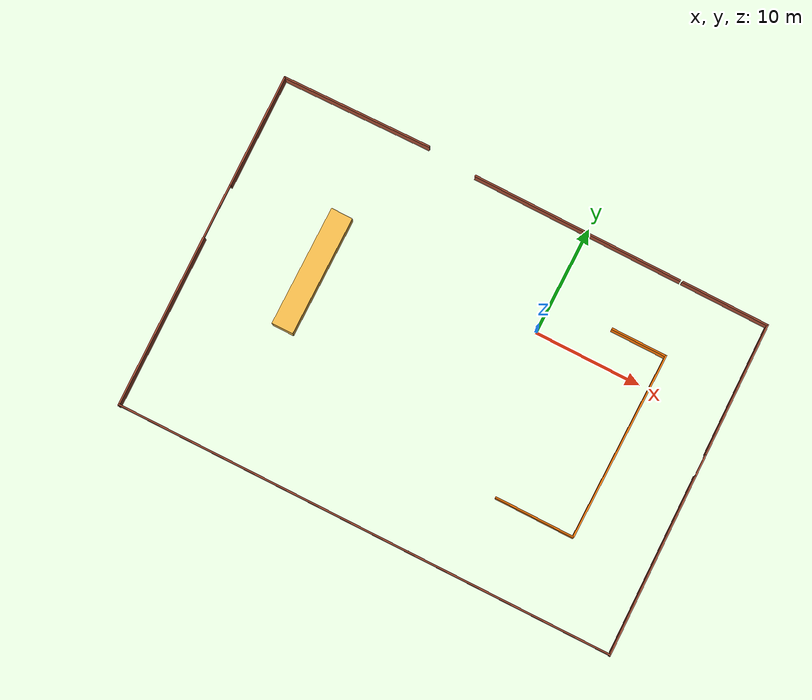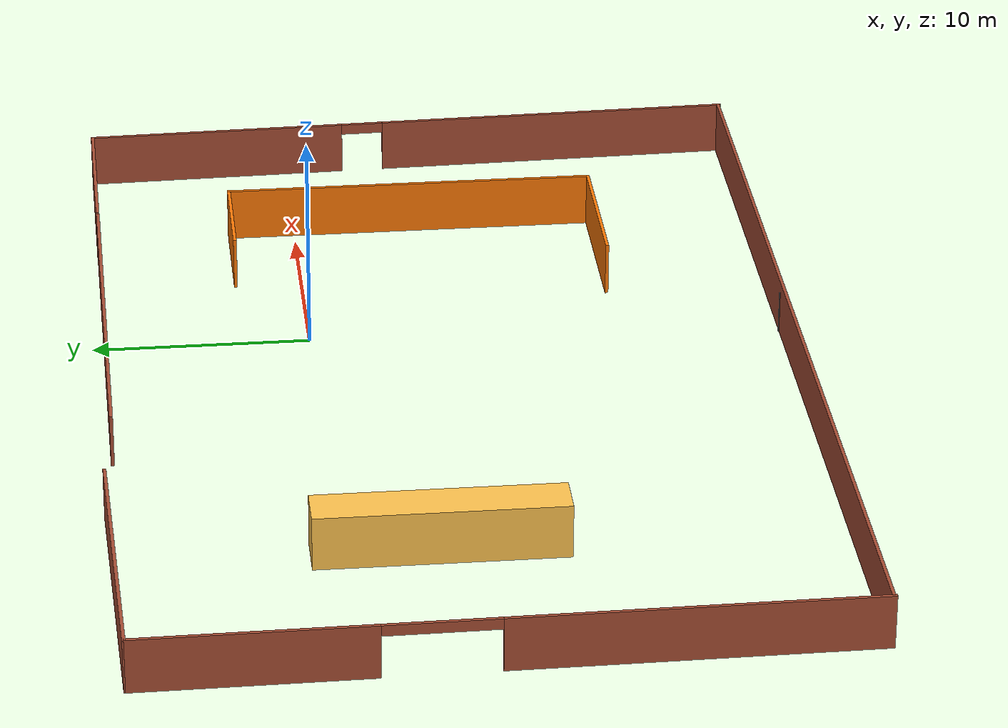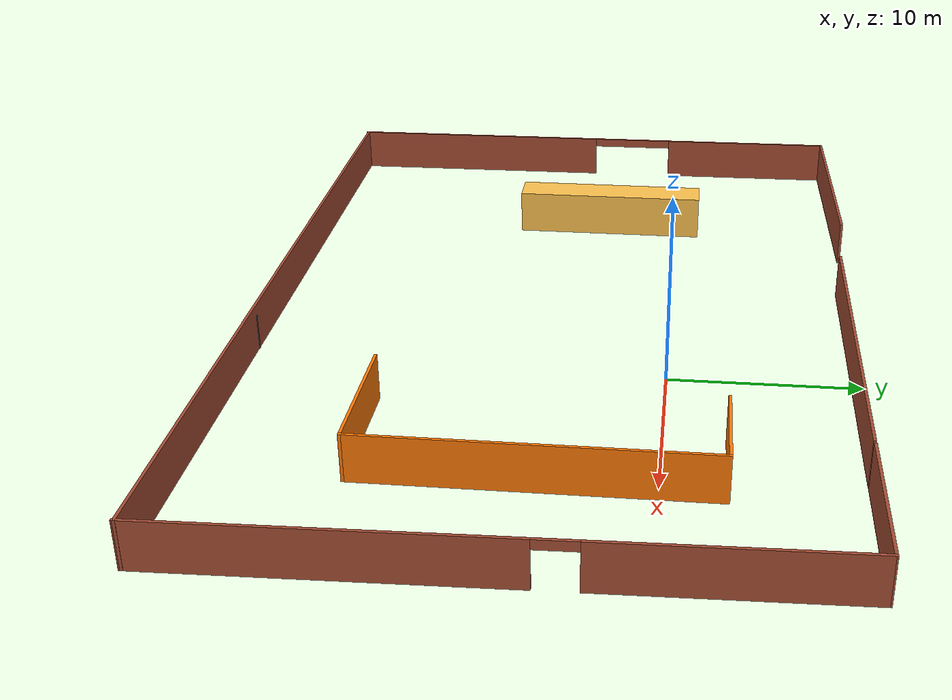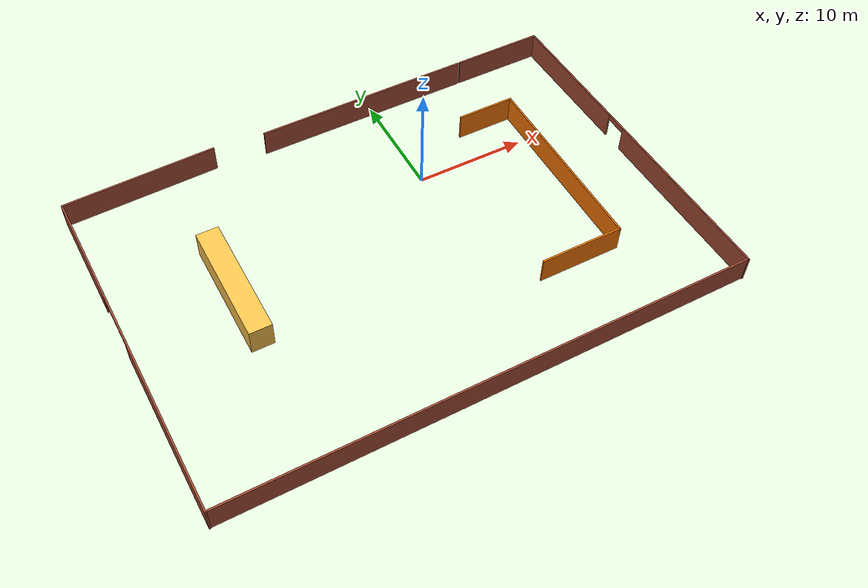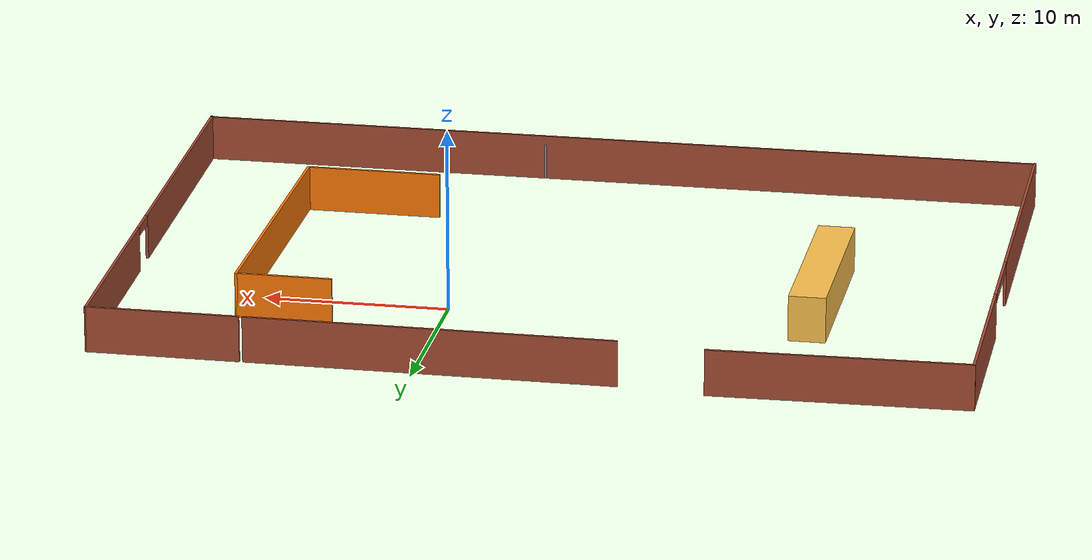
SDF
<?xml version='1.0'?>
<sdf version='1.7'>
  <model name='carhouse'>
    <pose>-5.49363 -6.06314 0 0 -0 0</pose>
    <link name='Door_1'>
      <collision name='Door_1_Collision'>
        <geometry>
          <box>
            <size>0.1 0.17 2</size>
          </box>
        </geometry>
        <pose>0 0 1 0 -0 0</pose>
      </collision>
      <visual name='Door_1_Visual'>
        <pose>0 0 1 0 -0 0</pose>
        <geometry>
          <box>
            <size>0.1 0.17 2</size>
          </box>
        </geometry>
        <material>
          <script>
            <uri>file://media/materials/scripts/gazebo.material</uri>
            <name>Gazebo/Grey</name>
          </script>
        </material>
      </visual>
      <pose>4.31634 -15.7107 0 0 -0 0</pose>
    </link>
    <link name='Wall_0'>
      <collision name='Wall_0_Collision'>
        <geometry>
          <box>
            <size>19.75 0.15 2.5</size>
          </box>
        </geometry>
        <pose>0 0 1.25 0 -0 0</pose>
      </collision>
      <visual name='Wall_0_Visual'>
        <pose>0 0 1.25 0 -0 0</pose>
        <geometry>
          <box>
            <size>19.75 0.15 2.5</size>
          </box>
        </geometry>
        <material>
          <script>
            <uri>file://media/materials/scripts/gazebo.material</uri>
            <name>Gazebo/Bricks</name>
          </script>
          <ambient>1 1 1 1</ambient>
        </material>
        <meta>
          <layer>0</layer>
        </meta>
      </visual>
      <pose>4.60447 15.488 0 0 -0 0</pose>
    </link>
    <link name='Wall_10'>
      <collision name='Wall_10_Collision'>
        <geometry>
          <box>
            <size>5.25 0.15 2.5</size>
          </box>
        </geometry>
        <pose>0 0 1.25 0 -0 0</pose>
      </collision>
      <visual name='Wall_10_Visual'>
        <pose>0 0 1.25 0 -0 0</pose>
        <geometry>
          <box>
            <size>5.25 0.15 2.5</size>
          </box>
        </geometry>
        <material>
          <script>
            <uri>file://media/materials/scripts/gazebo.material</uri>
            <name>Gazebo/Grey</name>
          </script>
          <ambient>0.996078 0.47451 0.0196078 1</ambient>
        </material>
        <meta>
          <layer>0</layer>
        </meta>
      </visual>
      <pose>13.7472 9.15935 0 0 -0 0</pose>
    </link>
    <link name='Wall_11'>
      <collision name='Wall_11_Collision'>
        <geometry>
          <box>
            <size>17.5 0.15 2.5</size>
          </box>
        </geometry>
        <pose>0 0 1.25 0 -0 0</pose>
      </collision>
      <visual name='Wall_11_Visual'>
        <pose>0 0 1.25 0 -0 0</pose>
        <geometry>
          <box>
            <size>17.5 0.15 2.5</size>
          </box>
        </geometry>
        <material>
          <script>
            <uri>file://media/materials/scripts/gazebo.material</uri>
            <name>Gazebo/Grey</name>
          </script>
          <ambient>0.996078 0.47451 0.0196078 1</ambient>
        </material>
        <meta>
          <layer>0</layer>
        </meta>
      </visual>
      <pose>16.2972 0.484344 0 0 -0 -1.5708</pose>
    </link>
    <link name='Wall_12'>
      <collision name='Wall_12_Collision'>
        <geometry>
          <box>
            <size>7.5 0.15 2.5</size>
          </box>
        </geometry>
        <pose>0 0 1.25 0 -0 0</pose>
      </collision>
      <visual name='Wall_12_Visual'>
        <pose>0 0 1.25 0 -0 0</pose>
        <geometry>
          <box>
            <size>7.5 0.15 2.5</size>
          </box>
        </geometry>
        <material>
          <script>
            <uri>file://media/materials/scripts/gazebo.material</uri>
            <name>Gazebo/Grey</name>
          </script>
          <ambient>0.996078 0.47451 0.0196078 1</ambient>
        </material>
        <meta>
          <layer>0</layer>
        </meta>
      </visual>
      <pose>12.6222 -8.19065 0 0 -0 3.14159</pose>
    </link>
    <link name='Wall_2'>
      <collision name='Wall_2_Collision'>
        <geometry>
          <box>
            <size>8.25 0.15 2.5</size>
          </box>
        </geometry>
        <pose>0 0 1.25 0 -0 0</pose>
      </collision>
      <visual name='Wall_2_Visual'>
        <pose>0 0 1.25 0 -0 0</pose>
        <geometry>
          <box>
            <size>8.25 0.15 2.5</size>
          </box>
        </geometry>
        <material>
          <script>
            <uri>file://media/materials/scripts/gazebo.material</uri>
            <name>Gazebo/Bricks</name>
          </script>
          <ambient>1 1 1 1</ambient>
        </material>
        <meta>
          <layer>0</layer>
        </meta>
      </visual>
      <pose>18.7688 15.4972 0 0 -0 0</pose>
    </link>
    <link name='Wall_3'>
      <pose>23.2235 -0.104018 0 0 -0 -1.54486</pose>
      <visual name='Wall_3_Visual_0'>
        <pose>-9.4995 0 1.25 0 -0 0</pose>
        <geometry>
          <box>
            <size>12.364 0.15 2.5</size>
          </box>
        </geometry>
        <material>
          <script>
            <uri>file://media/materials/scripts/gazebo.material</uri>
            <name>Gazebo/Bricks</name>
          </script>
          <ambient>1 1 1 1</ambient>
        </material>
        <meta>
          <layer>0</layer>
        </meta>
      </visual>
      <collision name='Wall_3_Collision_0'>
        <geometry>
          <box>
            <size>12.364 0.15 2.5</size>
          </box>
        </geometry>
        <pose>-9.4995 0 1.25 0 -0 0</pose>
      </collision>
      <visual name='Wall_3_Visual_1'>
        <pose>7.18199 0 1.25 0 -0 0</pose>
        <geometry>
          <box>
            <size>16.999 0.15 2.5</size>
          </box>
        </geometry>
        <material>
          <script>
            <uri>file://media/materials/scripts/gazebo.material</uri>
            <name>Gazebo/Bricks</name>
          </script>
          <ambient>1 1 1 1</ambient>
        </material>
        <meta>
          <layer>0</layer>
        </meta>
      </visual>
      <collision name='Wall_3_Collision_1'>
        <geometry>
          <box>
            <size>16.999 0.15 2.5</size>
          </box>
        </geometry>
        <pose>7.18199 0 1.25 0 -0 0</pose>
      </collision>
      <visual name='Wall_3_Visual_2'>
        <pose>-2.31751 0 2.25 0 -0 0</pose>
        <geometry>
          <box>
            <size>2 0.15 0.5</size>
          </box>
        </geometry>
        <material>
          <script>
            <uri>file://media/materials/scripts/gazebo.material</uri>
            <name>Gazebo/Bricks</name>
          </script>
          <ambient>1 1 1 1</ambient>
        </material>
        <meta>
          <layer>0</layer>
        </meta>
      </visual>
      <collision name='Wall_3_Collision_2'>
        <geometry>
          <box>
            <size>2 0.15 0.5</size>
          </box>
        </geometry>
        <pose>-2.31751 0 2.25 0 -0 0</pose>
      </collision>
    </link>
    <link name='Wall_4'>
      <collision name='Wall_4_Collision'>
        <geometry>
          <box>
            <size>47.0582 0.15 2.5</size>
          </box>
        </geometry>
        <pose>0 0 1.25 0 -0 0</pose>
      </collision>
      <visual name='Wall_4_Visual'>
        <pose>0 0 1.25 0 -0 0</pose>
        <geometry>
          <box>
            <size>47.0582 0.15 2.5</size>
          </box>
        </geometry>
        <material>
          <script>
            <uri>file://media/materials/scripts/gazebo.material</uri>
            <name>Gazebo/Bricks</name>
          </script>
          <ambient>1 1 1 1</ambient>
        </material>
        <meta>
          <layer>0</layer>
        </meta>
      </visual>
      <pose>0.174314 -15.7498 0 0 -0 -3.13718</pose>
    </link>
    <link name='Wall_5'>
      <pose>-23.4539 -0.207518 0 0 -0 1.5819</pose>
      <visual name='Wall_5_Visual_0'>
        <pose>-7.69331 0 1.25 0 -0 0</pose>
        <geometry>
          <box>
            <size>16.1748 0.15 2.5</size>
          </box>
        </geometry>
        <material>
          <script>
            <uri>file://media/materials/scripts/gazebo.material</uri>
            <name>Gazebo/Bricks</name>
          </script>
          <ambient>1 1 1 1</ambient>
        </material>
        <meta>
          <layer>0</layer>
        </meta>
      </visual>
      <collision name='Wall_5_Collision_0'>
        <geometry>
          <box>
            <size>16.1748 0.15 2.5</size>
          </box>
        </geometry>
        <pose>-7.69331 0 1.25 0 -0 0</pose>
      </collision>
      <visual name='Wall_5_Visual_1'>
        <pose>10.5874 0 1.25 0 -0 0</pose>
        <geometry>
          <box>
            <size>10.3866 0.15 2.5</size>
          </box>
        </geometry>
        <material>
          <script>
            <uri>file://media/materials/scripts/gazebo.material</uri>
            <name>Gazebo/Bricks</name>
          </script>
          <ambient>1 1 1 1</ambient>
        </material>
        <meta>
          <layer>0</layer>
        </meta>
      </visual>
      <collision name='Wall_5_Collision_1'>
        <geometry>
          <box>
            <size>10.3866 0.15 2.5</size>
          </box>
        </geometry>
        <pose>10.5874 0 1.25 0 -0 0</pose>
      </collision>
      <visual name='Wall_5_Visual_2'>
        <pose>2.8941 0 2.25 0 -0 0</pose>
        <geometry>
          <box>
            <size>5 0.15 0.5</size>
          </box>
        </geometry>
        <material>
          <script>
            <uri>file://media/materials/scripts/gazebo.material</uri>
            <name>Gazebo/Bricks</name>
          </script>
          <ambient>1 1 1 1</ambient>
        </material>
        <meta>
          <layer>0</layer>
        </meta>
      </visual>
      <collision name='Wall_5_Collision_2'>
        <geometry>
          <box>
            <size>5 0.15 0.5</size>
          </box>
        </geometry>
        <pose>2.8941 0 2.25 0 -0 0</pose>
      </collision>
    </link>
    <link name='Wall_6'>
      <collision name='Wall_6_Collision'>
        <geometry>
          <box>
            <size>13.8693 0.15 2.5</size>
          </box>
        </geometry>
        <pose>0 0 1.25 0 -0 0</pose>
      </collision>
      <visual name='Wall_6_Visual'>
        <pose>0 0 1.25 0 -0 0</pose>
        <geometry>
          <box>
            <size>13.8693 0.15 2.5</size>
          </box>
        </geometry>
        <material>
          <script>
            <uri>file://media/materials/scripts/gazebo.material</uri>
            <name>Gazebo/Bricks</name>
          </script>
          <ambient>1 1 1 1</ambient>
        </material>
        <meta>
          <layer>0</layer>
        </meta>
      </visual>
      <pose>-16.7707 15.7387 0 0 -0 0.02515</pose>
    </link>
    <link name='Wall_8'>
      <collision name='Wall_8_Collision'>
        <geometry>
          <box>
            <size>11.1 2 2.5</size>
          </box>
        </geometry>
        <pose>0 0 1.25 0 -0 0</pose>
      </collision>
      <visual name='Wall_8_Visual'>
        <pose>0 0 1.25 0 -0 0</pose>
        <geometry>
          <box>
            <size>11.1 2 2.5</size>
          </box>
        </geometry>
        <material>
          <script>
            <uri>file://media/materials/scripts/gazebo.material</uri>
            <name>Gazebo/Grey</name>
          </script>
          <ambient>1 0.764706 0.305882 1</ambient>
        </material>
        <meta>
          <layer>0</layer>
        </meta>
      </visual>
      <pose>-13.893 1.83714 0 0 -0 -1.5708</pose>
    </link>
    <static>1</static>
  </model>
</sdf>
